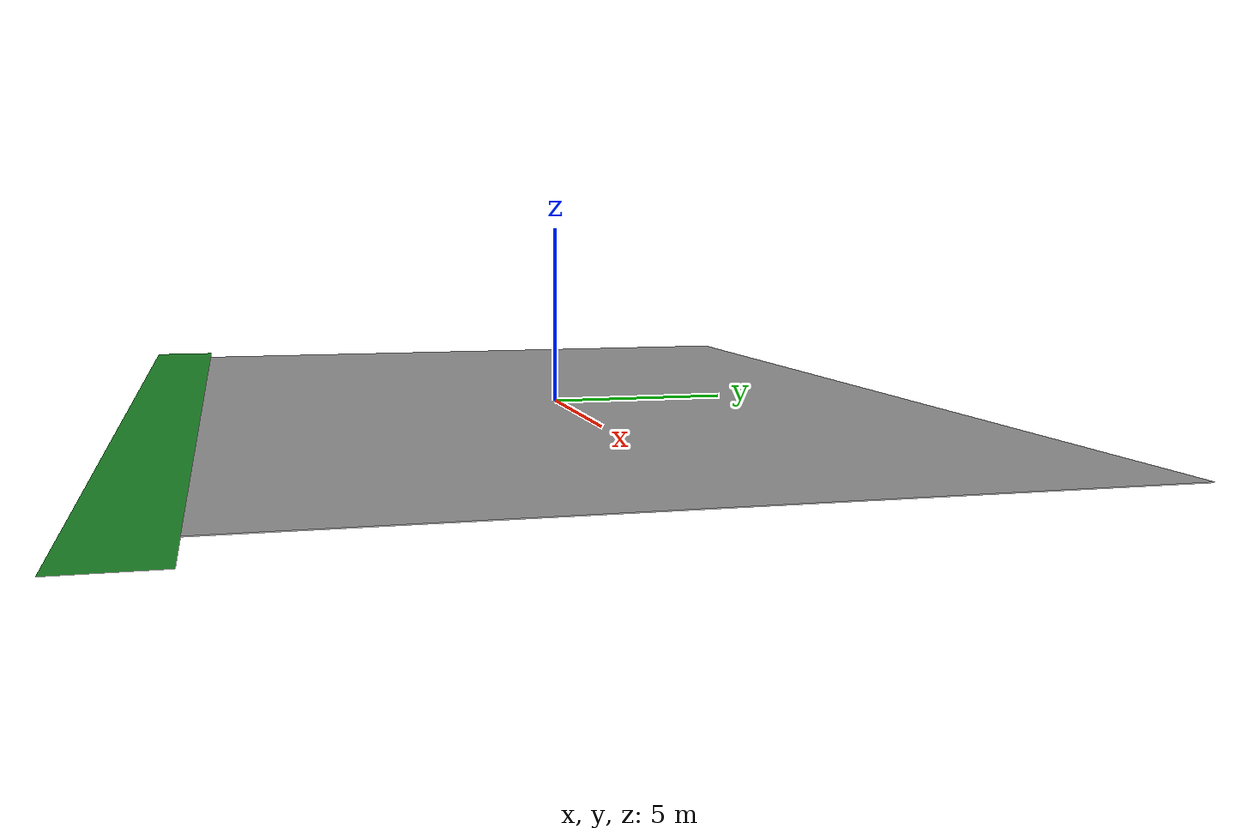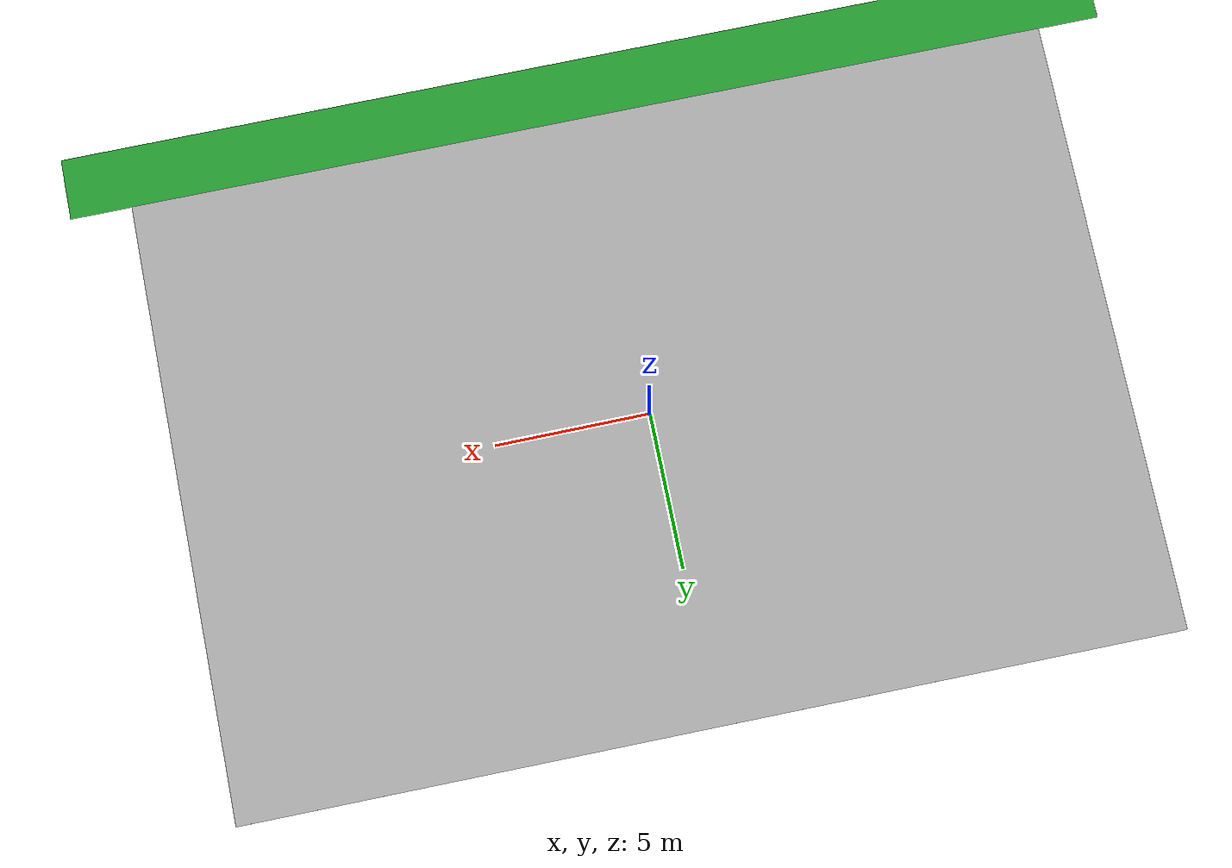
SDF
<?xml version="1.0" ?>
<sdf version="1.4">
  <model name="IARC 3D Simulation arena">
    <static>true</static>

    <link name="field">
      <pose>0 0 0.01 0 0 0</pose>
      <collision name="collision">
        <geometry>
          <plane>
            <normal>0 0 1</normal>
            <size>30.0 20.0</size>
          </plane>
        </geometry>
        <surface>
          <friction>
            <ode>
              <mu>100</mu>
              <mu2>50</mu2>
            </ode>
          </friction>
        </surface>
      </collision>

      <visual name="base2">
        <pose>0 -11 0.001 0 0 0</pose>
        <cast_shadows>false</cast_shadows>
        <geometry>
          <plane>
            <normal>0 0 1</normal>
            <size>34.0 2.0</size>
          </plane>
        </geometry>
        <material>
          <script>
            <uri>model://iarc_arena/materials/scripts/</uri>
            <uri>model://iarc_arena/materials/textures/</uri>
            <name>IARC/FieldBorderGreen</name>
          </script>
        </material>
      </visual>

      <visual name="base3">
        <pose>11 0 0.001 0 0 0</pose>
        <cast_shadows>false</cast_shadows>
        <geometry>
          <plane>
            <normal>0 0 1</normal>
            <size>2.0 20.0</size>
          </plane>
        </geometry>
        <material>
          <script>
            <uri>model://iarc_arena/materials/scripts/</uri>
            <uri>model://iarc_arena/materials/textures/</uri>
            <name>IARC/FieldBorderWhite</name>
          </script>
        </material>
      </visual>

      <visual name="base4">
        <pose>-11 0 0.001 0 0 0</pose>
        <cast_shadows>false</cast_shadows>
        <geometry>
          <plane>
            <normal>0 0 1</normal>
            <size>2.0 20.0</size>
          </plane>
        </geometry>
        <material>
          <script>
            <uri>model://iarc_arena/materials/scripts/</uri>
            <uri>model://iarc_arena/materials/textures/</uri>
            <name>IARC/FieldBorderWhite</name>
          </script>
        </material>
      </visual>

      <visual name="carpet">
        <cast_shadows>false</cast_shadows>
        <geometry>
          <plane>
            <normal>0 0 1</normal>
            <size>30.0 20.0</size>
          </plane>
        </geometry>
        <material>
          <script>
            <uri>model://iarc_arena/materials/scripts/</uri>
            <uri>model://iarc_arena/materials/textures/</uri>
            <name>IARC/Ground</name>
          </script>
        </material>
      </visual>
    </link>
  </model>
</sdf>
